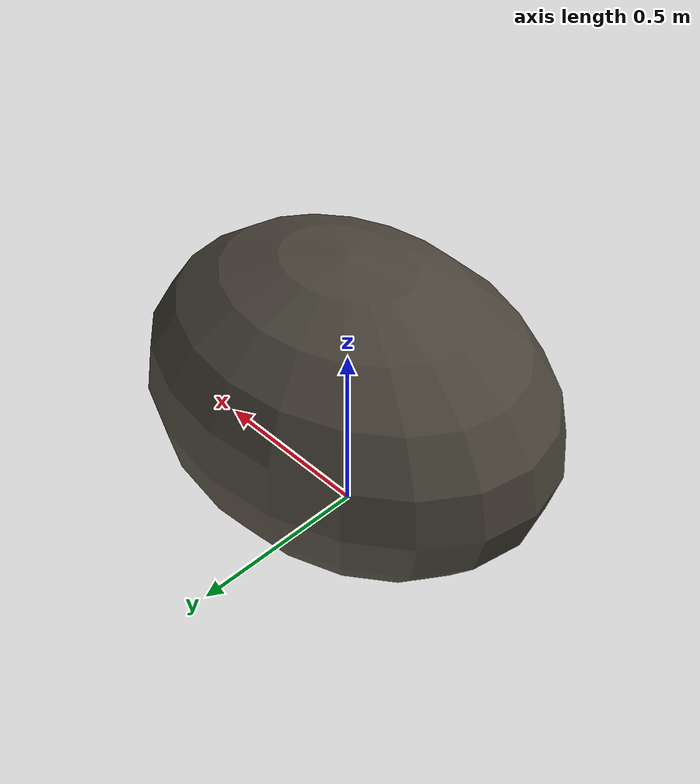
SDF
<?xml version="1.0"?>
<sdf version="1.10"><model name="rock"><static>true</static><link name="rock">
  <collision name="collision"><pose>0 0 0.4 0 0 0</pose><geometry><ellipsoid><radii>0.6 0.45 0.4</radii></ellipsoid></geometry></collision>
  <visual name="visual"><pose>0 0 0.4 0 0 0</pose><geometry><ellipsoid><radii>0.6 0.45 0.4</radii></ellipsoid></geometry><material><diffuse>0.29 0.27 0.23 1</diffuse></material></visual>
</link></model></sdf>
